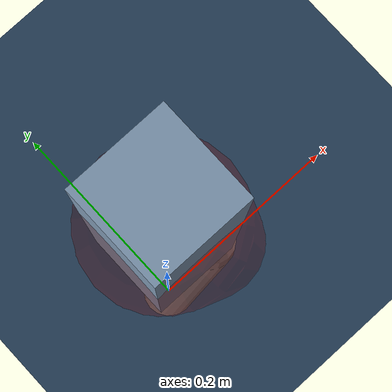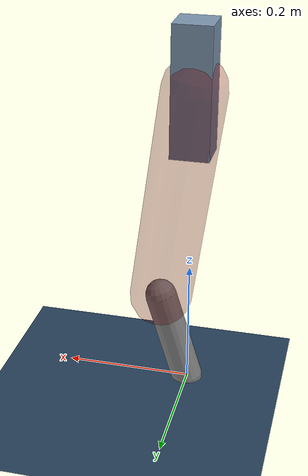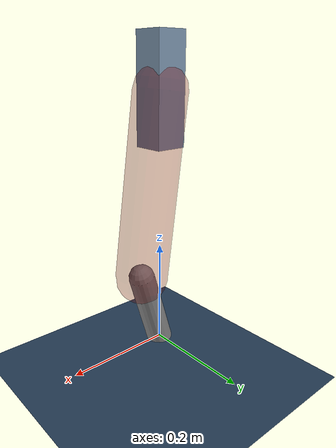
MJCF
<mujoco model="Hopper2D">
	<compiler inertiafromgeom="true" angle="radian" />
	<option timestep="0.001" integrator="implicit" cone="elliptic" solver="Newton" tolerance="1e-10" />

	<default>
		<geom contype="1" conaffinity="1" condim="3" friction="2 0.005 0.0001" solref="0.005 1" />
		<joint limited="true" damping="0.1" />
	</default>

	<asset>
		<texture name="skybox" type="skybox" builtin="gradient" rgb1=".4 .6 .8" rgb2="0 0 0" width="800" height="800" />
		<texture name="grid" type="2d" builtin="checker" rgb1=".1 .2 .3" rgb2=".2 .3 .4" width="300" height="300" mark="edge" markrgb=".2 .3 .4" />
		<material name="ground" texture="grid" texrepeat="1 1" texuniform="true" reflectance="0.1" />
		<material name="leg" rgba="0.5 0.6 0.7 1" />
	</asset>

	<worldbody>

		<geom name="floor" type="plane" size="5 5 0.25" material="ground" />

		<light directional="false" diffuse="0.8 0.8 0.8" specular="0.3 0.3 0.3" pos="0 0 2" dir="0 0 -1" />
		<light mode="targetbodycom" target="base" directional="false" diffuse="0.8 0.8 0.8" specular="0.3 0.3 0.3" pos="0 0 2" dir="0 0 -1" />

		<camera name="fixed" pos="0 -2 1" xyaxes="1 0 0 0 0 1" />
		<camera name="tracking" mode="trackcom" pos="0 -3 1" />

		<body name="root" pos="0 0 0.4920371961362391">
			<joint name="slide_x" type="slide" axis="1 0 0" range="-100 100" />
			<joint name="slide_z" type="slide" axis="0 0 1" range="0 10" />

			<body name="base" pos="0 0 0">
				<geom name="torso" type="box" size="0.03 0.03 0.1" mass="3.157" material="leg" />

				<body name="link1" pos="0 0 0" euler="0 1.4390542250978537 0">
					<joint type="hinge" axis="0 -1 0" pos="0 0 0" name="hinge1" limited="true" range="-3.14 3.14" stiffness="0" damping="0.1" />
					<geom name="thigh" type="capsule" fromto="0 0 0 0.34846247914282497 0 0" size="0.05" rgba="0.5 0 0 0.3" mass="1.12239494159991" />

					<body name="link2" pos="0.34846247914282497 0 0" euler="0 0.43440187069122643 0">
						<joint type="hinge" axis="0 -1 0" pos="0 0 0" name="hinge2" limited="true" range="-3.14 3.14" stiffness="0" damping="0.1" />
						<geom name="shank" type="capsule" fromto="0 0 0 0.15357471699341407 0 0" size="0.025" mass="0.36091724529407265" />

					</body>
				</body>
			</body>
		</body>
	</worldbody>

	<actuator>
		<motor name="torque1" joint="hinge1" ctrlrange="-196.254429735502 196.254429735502" ctrllimited="true" gear="1" />
		<motor name="torque2" joint="hinge2" ctrlrange="-96.13125855364949 96.13125855364949" ctrllimited="true" gear="1" />
	</actuator>
</mujoco>
